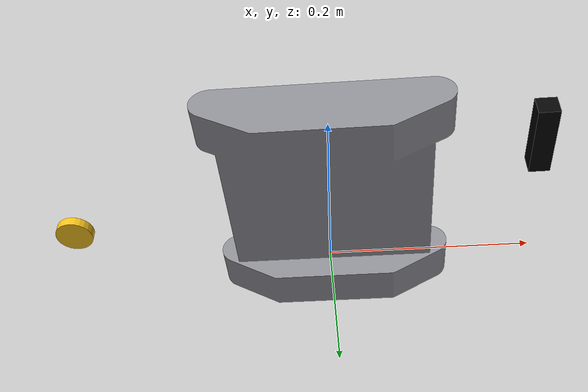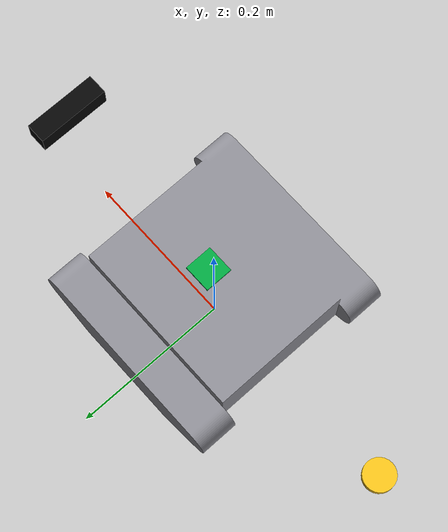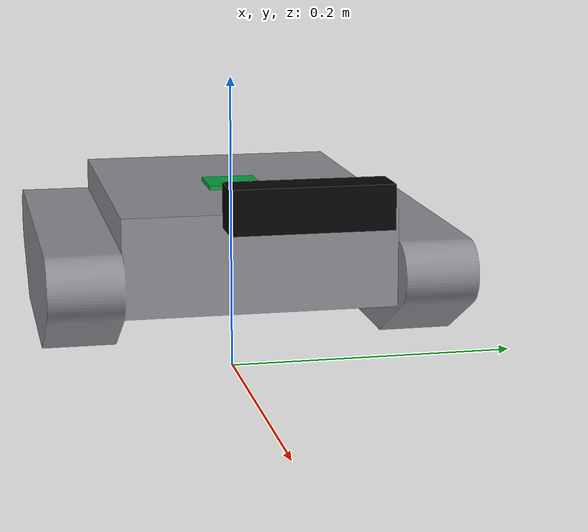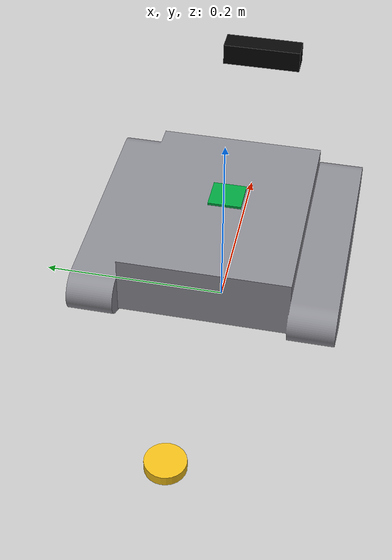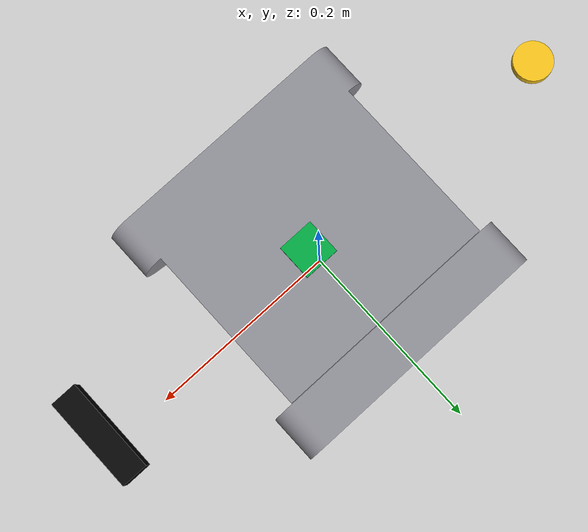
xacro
<?xml version="1.0"?>
<robot xmlns:xacro="http://www.ros.org/wiki/xacro" name="duri">
  <xacro:arg name="use_mesh_visual" default="true"/>
  <xacro:arg name="sim_camera_update_rate" default="15.0"/>
  <xacro:arg name="sim_camera_width" default="424"/>
  <xacro:arg name="sim_camera_height" default="240"/>
  <xacro:arg name="sim_camera_visualize" default="false"/>
  <xacro:arg name="mesh_file" default="package://trashbot_description/meshes/duri_visual_mesh.stl"/>
  <xacro:property name="visual_mesh_file" value="$(arg mesh_file)"/>

  <!--
    Duri tracked chassis first draft.
    Onshape mate connector measurements were recorded in millimeters on 2026-05-08
    and converted to meters here.
  -->
  <xacro:property name="base_length" value="0.62"/>
  <xacro:property name="base_width" value="0.32"/>
  <xacro:property name="base_height" value="0.18"/>
  <xacro:property name="base_mass" value="12.0"/>
  <xacro:property name="base_link_z" value="0.038536"/>
  <xacro:property name="chassis_mesh_z" value="0.0"/>
  <xacro:property name="chassis_mesh_yaw" value="${pi / 2.0}"/>

  <!-- Keep collision simple; detailed turtle shell and track meshes are visual only. -->
  <xacro:property name="collision_length" value="${base_length}"/>
  <xacro:property name="collision_width" value="${base_width}"/>
  <xacro:property name="collision_height" value="${2.0 * base_link_z}"/>
  <xacro:property name="collision_z" value="0.0"/>

  <!-- Duri-specific sensor mount measurements from base_link_mc. -->
  <xacro:property name="camera_x" value="0.245385"/>
  <xacro:property name="camera_y" value="0.0"/>
  <xacro:property name="camera_z" value="0.120895"/>
  <xacro:property name="camera_roll" value="0.0"/>
  <xacro:property name="camera_pitch" value="0.0"/>
  <xacro:property name="camera_yaw" value="0.0"/>
  <xacro:property name="sim_camera_horizontal_fov" value="1.3962634"/>
  <xacro:property name="sim_camera_near_clip" value="0.10"/>
  <xacro:property name="sim_camera_far_clip" value="6.00"/>

  <xacro:property name="imu_x" value="0.010724"/>
  <xacro:property name="imu_y" value="-0.001608"/>
  <xacro:property name="imu_z" value="0.089039"/>
  <xacro:property name="imu_roll" value="0.0"/>
  <xacro:property name="imu_pitch" value="0.0"/>
  <xacro:property name="imu_yaw" value="0.0"/>
  <xacro:property name="sim_imu_update_rate" value="100.0"/>

  <xacro:property name="gps_x" value="-0.276881"/>
  <xacro:property name="gps_y" value="0.0"/>
  <xacro:property name="gps_z" value="0.005984"/>
  <xacro:property name="gps_r" value="0.020"/>
  <xacro:property name="gps_h" value="0.010"/>

  <!-- Track ground-contact reference points from base_link_mc. -->
  <xacro:property name="track_contact_z" value="-0.038536"/>
  <xacro:property name="track_center_y" value="0.109858"/>
  <xacro:property name="track_separation" value="${2.0 * track_center_y}"/>

  <material name="chassis_gray">
    <color rgba="0.55 0.55 0.58 1.0"/>
  </material>
  <material name="sensor_black">
    <color rgba="0.02 0.02 0.02 1.0"/>
  </material>
  <material name="imu_green">
    <color rgba="0.0 0.65 0.25 1.0"/>
  </material>
  <material name="gps_yellow">
    <color rgba="0.95 0.75 0.1 1.0"/>
  </material>

  <xacro:macro name="box_inertial" params="mass x y z">
    <inertial>
      <mass value="${mass}"/>
      <inertia
        ixx="${mass * (y*y + z*z) / 12.0}"
        ixy="0.0"
        ixz="0.0"
        iyy="${mass * (x*x + z*z) / 12.0}"
        iyz="0.0"
        izz="${mass * (x*x + y*y) / 12.0}"/>
    </inertial>
  </xacro:macro>

  <xacro:macro name="cylinder_inertial" params="mass radius length">
    <inertial>
      <mass value="${mass}"/>
      <inertia
        ixx="${mass * (3.0 * radius * radius + length * length) / 12.0}"
        ixy="0.0"
        ixz="0.0"
        iyy="${mass * radius * radius / 2.0}"
        iyz="0.0"
        izz="${mass * (3.0 * radius * radius + length * length) / 12.0}"/>
    </inertial>
  </xacro:macro>

  <link name="base_footprint"/>
  <link name="base_link"/>

  <joint name="base_footprint_to_base_link" type="fixed">
    <parent link="base_footprint"/>
    <child link="base_link"/>
    <origin xyz="0 0 ${base_link_z}" rpy="0 0 0"/>
  </joint>

  <link name="chassis_link">
    <visual name="mesh_visual">
      <xacro:if value="$(arg use_mesh_visual)">
      <origin xyz="0 0 ${chassis_mesh_z}" rpy="0 0 ${chassis_mesh_yaw}"/>
      <geometry>
        <mesh filename="${visual_mesh_file}"/>
      </geometry>
      <material name="chassis_gray"/>
      </xacro:if>
      <xacro:unless value="$(arg use_mesh_visual)">
      <origin xyz="0 0 ${collision_z}" rpy="0 0 0"/>
      <geometry>
        <box size="${collision_length} ${collision_width} ${collision_height}"/>
      </geometry>
      <material name="chassis_gray"/>
      </xacro:unless>
    </visual>
    <collision>
      <origin xyz="0 0 ${collision_z}" rpy="0 0 0"/>
      <geometry>
        <box size="${collision_length} ${collision_width} ${collision_height}"/>
      </geometry>
    </collision>
    <xacro:box_inertial
      mass="${base_mass}"
      x="${collision_length}"
      y="${collision_width}"
      z="${collision_height}"/>
  </link>

  <joint name="base_to_chassis" type="fixed">
    <parent link="base_link"/>
    <child link="chassis_link"/>
    <origin xyz="0 0 0" rpy="0 0 0"/>
  </joint>

  <link name="camera_link">
    <visual>
      <geometry>
        <box size="0.025 0.09 0.025"/>
      </geometry>
      <material name="sensor_black"/>
    </visual>
    <collision>
      <geometry>
        <box size="0.025 0.09 0.025"/>
      </geometry>
    </collision>
    <xacro:box_inertial mass="0.08" x="0.025" y="0.09" z="0.025"/>
  </link>

  <joint name="base_to_camera" type="fixed">
    <parent link="base_link"/>
    <child link="camera_link"/>
    <origin xyz="${camera_x} ${camera_y} ${camera_z}" rpy="${camera_roll} ${camera_pitch} ${camera_yaw}"/>
  </joint>

  <!-- D435i optical frame convention: z forward, x right, y down. -->
  <link name="camera_color_optical_frame"/>
  <joint name="camera_link_to_color_optical_frame" type="fixed">
    <parent link="camera_link"/>
    <child link="camera_color_optical_frame"/>
    <origin xyz="0 0 0" rpy="${-pi / 2.0} 0 ${-pi / 2.0}"/>
  </joint>

  <link name="camera_depth_optical_frame"/>
  <joint name="camera_link_to_depth_optical_frame" type="fixed">
    <parent link="camera_link"/>
    <child link="camera_depth_optical_frame"/>
    <origin xyz="0 0 0" rpy="${-pi / 2.0} 0 ${-pi / 2.0}"/>
  </joint>

  <link name="imu_link">
    <visual>
      <geometry>
        <box size="0.035 0.035 0.008"/>
      </geometry>
      <material name="imu_green"/>
    </visual>
    <collision>
      <geometry>
        <box size="0.035 0.035 0.008"/>
      </geometry>
    </collision>
    <xacro:box_inertial mass="0.01" x="0.035" y="0.035" z="0.008"/>
  </link>

  <joint name="base_to_imu" type="fixed">
    <parent link="base_link"/>
    <child link="imu_link"/>
    <origin xyz="${imu_x} ${imu_y} ${imu_z}" rpy="${imu_roll} ${imu_pitch} ${imu_yaw}"/>
  </joint>

  <link name="gps_link">
    <visual>
      <geometry>
        <cylinder radius="${gps_r}" length="${gps_h}"/>
      </geometry>
      <material name="gps_yellow"/>
    </visual>
    <collision>
      <geometry>
        <cylinder radius="${gps_r}" length="${gps_h}"/>
      </geometry>
    </collision>
    <xacro:cylinder_inertial mass="0.04" radius="${gps_r}" length="${gps_h}"/>
  </link>

  <joint name="base_to_gps" type="fixed">
    <parent link="base_link"/>
    <child link="gps_link"/>
    <origin xyz="${gps_x} ${gps_y} ${gps_z}" rpy="0 0 0"/>
  </joint>

  <!-- Empty reference links for future Gazebo/odometry track geometry checks. -->
  <link name="track_left_contact_link"/>
  <joint name="base_to_track_left_contact" type="fixed">
    <parent link="base_link"/>
    <child link="track_left_contact_link"/>
    <origin xyz="0 ${track_center_y} ${track_contact_z}" rpy="0 0 0"/>
  </joint>

  <link name="track_right_contact_link"/>
  <joint name="base_to_track_right_contact" type="fixed">
    <parent link="base_link"/>
    <child link="track_right_contact_link"/>
    <origin xyz="0 ${-track_center_y} ${track_contact_z}" rpy="0 0 0"/>
  </joint>

  <gazebo reference="imu_link">
    <sensor name="duri_imu" type="imu">
      <always_on>true</always_on>
      <update_rate>${sim_imu_update_rate}</update_rate>
      <visualize>false</visualize>
      <imu>
        <angular_velocity>
          <x>
            <noise type="gaussian">
              <mean>0.0</mean>
              <stddev>0.0002</stddev>
            </noise>
          </x>
          <y>
            <noise type="gaussian">
              <mean>0.0</mean>
              <stddev>0.0002</stddev>
            </noise>
          </y>
          <z>
            <noise type="gaussian">
              <mean>0.0</mean>
              <stddev>0.0002</stddev>
            </noise>
          </z>
        </angular_velocity>
        <linear_acceleration>
          <x>
            <noise type="gaussian">
              <mean>0.0</mean>
              <stddev>0.01</stddev>
            </noise>
          </x>
          <y>
            <noise type="gaussian">
              <mean>0.0</mean>
              <stddev>0.01</stddev>
            </noise>
          </y>
          <z>
            <noise type="gaussian">
              <mean>0.0</mean>
              <stddev>0.01</stddev>
            </noise>
          </z>
        </linear_acceleration>
      </imu>
      <plugin name="duri_imu_sensor" filename="libgazebo_ros_imu_sensor.so">
        <initial_orientation_as_reference>false</initial_orientation_as_reference>
        <frame_name>imu_link</frame_name>
        <ros>
          <remapping>~/out:=/imu/data</remapping>
        </ros>
      </plugin>
    </sensor>
  </gazebo>

  <gazebo reference="camera_link">
    <sensor name="duri_rgbd_camera" type="depth">
      <always_on>true</always_on>
      <update_rate>$(arg sim_camera_update_rate)</update_rate>
      <visualize>$(arg sim_camera_visualize)</visualize>
      <camera name="duri_rgbd_camera_optics">
        <horizontal_fov>${sim_camera_horizontal_fov}</horizontal_fov>
        <image>
          <width>$(arg sim_camera_width)</width>
          <height>$(arg sim_camera_height)</height>
          <format>R8G8B8</format>
        </image>
        <depth_camera>
        </depth_camera>
        <clip>
          <near>${sim_camera_near_clip}</near>
          <far>${sim_camera_far_clip}</far>
        </clip>
        <noise>
          <type>gaussian</type>
          <mean>0.0</mean>
          <stddev>0.005</stddev>
        </noise>
      </camera>
      <plugin name="duri_rgbd_camera_controller" filename="libgazebo_ros_camera.so">
        <ros>
          <remapping>camera/image_raw:=/camera/camera/color/image_raw</remapping>
          <remapping>camera/camera_info:=/camera/camera/color/camera_info</remapping>
          <remapping>camera/depth/image_raw:=/camera/camera/aligned_depth_to_color/image_raw</remapping>
          <remapping>camera/depth/camera_info:=/camera/camera/aligned_depth_to_color/camera_info</remapping>
          <remapping>camera/points:=/camera/camera/depth/color/points</remapping>
        </ros>
        <camera_name>camera</camera_name>
        <frame_name>camera_color_optical_frame</frame_name>
        <hack_baseline>0.0</hack_baseline>
        <min_depth>${sim_camera_near_clip}</min_depth>
        <max_depth>${sim_camera_far_clip}</max_depth>
      </plugin>
    </sensor>
  </gazebo>

  <gazebo>
    <plugin name="duri_planar_move" filename="libgazebo_ros_planar_move.so">
      <ros>
        <remapping>/tf:=tf</remapping>
      </ros>

      <update_rate>100</update_rate>
      <publish_rate>50</publish_rate>

      <command_topic>cmd_vel</command_topic>
      <odometry_topic>odom</odometry_topic>
      <odometry_frame>odom</odometry_frame>
      <robot_base_frame>base_footprint</robot_base_frame>

      <publish_odom>true</publish_odom>
      <publish_odom_tf>true</publish_odom_tf>

      <covariance_x>0.0001</covariance_x>
      <covariance_y>0.0001</covariance_y>
      <covariance_yaw>0.01</covariance_yaw>
    </plugin>
  </gazebo>
</robot>
